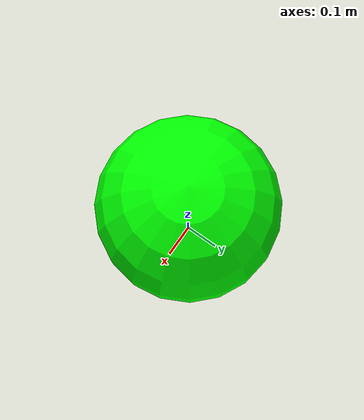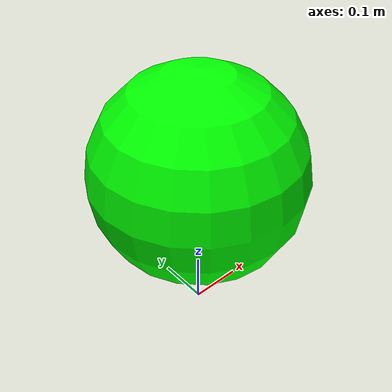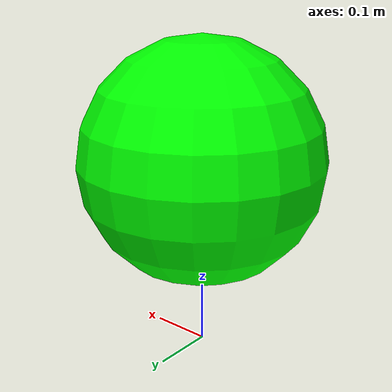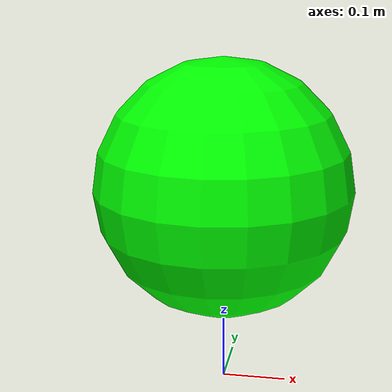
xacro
<?xml version="1.0" ?>

<robot name="ball">
    <link name="base_">ball
    <visual>
    <origin rpy="0 0 0" xyz="0 0 0.32"/>
      <geometry>
        <sphere radius="0.2"/>
      </geometry>
	  <material name="green"/>
    </visual>
    <collision>
    <origin rpy="0 0 0" xyz="0 0 0.32"/>
      <geometry>
       <sphere radius="0.2"/>
      </geometry>
    </collision>
    <inertial>
      <mass value="2"/>
      <inertia ixx="0.01366667" ixy="0.0" ixz="0.0" iyy="0.01293333" iyz="0.0" izz="4.06666667e-3"/>
        <origin  xyz="0 0 0.32"/>
    </inertial>
  </link>
  <material name="green"><color rgba="0 1 0 1"/></material>
  <material name="red"><color rgba="1 0 0 1"/></material>
</robot>
